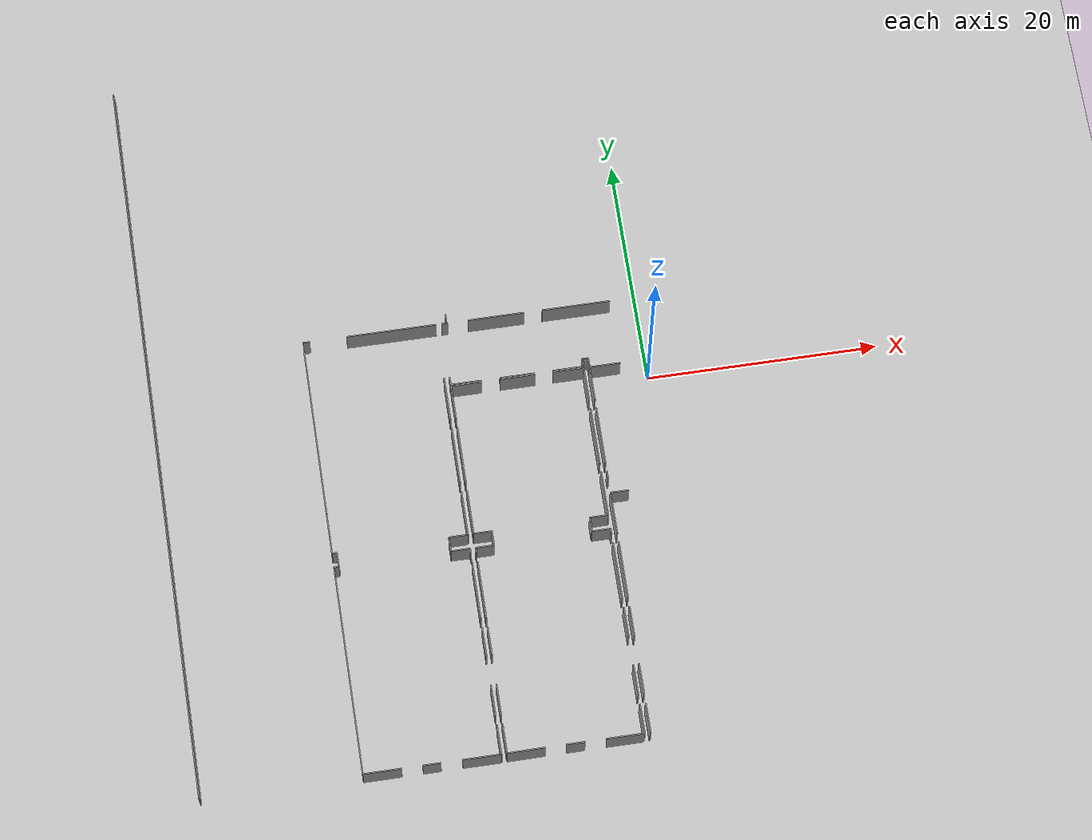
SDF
<sdf version="1.6">
 <world name="default">
  <model name="ground_plane">
   <static>1</static>
   <link name="link">
    <collision name="collision">
     <geometry><plane><normal>0 0 1</normal><size>100 100</size></plane></geometry>
     <surface><friction><ode><mu>100</mu><mu2>50</mu2></ode></friction></surface>
    </collision>
    <visual name="visual">
     <cast_shadows>0</cast_shadows>
     <geometry><plane><normal>0 0 1</normal><size>100 100</size></plane></geometry>
     <material>
      <script><uri>file://media/materials/scripts/gazebo.material</uri><name>Gazebo/Grey</name></script>
     </material>
    </visual>
   </link>
  </model>
  <model name="50052750">
   <static>1</static>
   <link name="Wall_56">
    <collision name="Wall_56_Collision">
     <geometry><box><size>3.21948890026 0.1 2.5</size></box></geometry>
     <pose>1.60974445013 0 1.25 0 0 0</pose>
    </collision>
    <visual name="Wall_56_Visual">
     <pose>1.60974445013 0 1.25 0 0 0</pose>
     <geometry><box><size>3.21948890026 0.1 2.5</size></box></geometry>
     <material>
      <script><uri>file://media/materials/scripts/gazebo.material</uri><name>Gazebo/Grey</name></script>
      <ambient>1 1 1 1</ambient>
     </material>
    </visual>
    <pose>13.5592187065 -64.6295663616 0 0 0 0.0</pose>
   </link>
   <link name="Wall_57">
    <collision name="Wall_57_Collision">
     <geometry><box><size>1.52407853577 0.1 2.5</size></box></geometry>
     <pose>0.762039267883 0 1.25 0 0 0</pose>
    </collision>
    <visual name="Wall_57_Visual">
     <pose>0.762039267883 0 1.25 0 0 0</pose>
     <geometry><box><size>1.52407853577 0.1 2.5</size></box></geometry>
     <material>
      <script><uri>file://media/materials/scripts/gazebo.material</uri><name>Gazebo/Grey</name></script>
      <ambient>1 1 1 1</ambient>
     </material>
    </visual>
    <pose>18.5236505237 -64.6295663616 0 0 0 0.0</pose>
   </link>
   <link name="Wall_58">
    <collision name="Wall_58_Collision">
     <geometry><box><size>3.23587274452 0.1 2.5</size></box></geometry>
     <pose>1.61793637226 0 1.25 0 0 0</pose>
    </collision>
    <visual name="Wall_58_Visual">
     <pose>1.61793637226 0 1.25 0 0 0</pose>
     <geometry><box><size>3.23587274452 0.1 2.5</size></box></geometry>
     <material>
      <script><uri>file://media/materials/scripts/gazebo.material</uri><name>Gazebo/Grey</name></script>
      <ambient>1 1 1 1</ambient>
     </material>
    </visual>
    <pose>21.8479198233 -64.6295663616 0 0 0 0.0</pose>
   </link>
   <link name="Wall_59">
    <collision name="Wall_59_Collision">
     <geometry><box><size>2.55105345578 0.1 2.5</size></box></geometry>
     <pose>1.27552672789 0 1.25 0 0 0</pose>
    </collision>
    <visual name="Wall_59_Visual">
     <pose>1.27552672789 0 1.25 0 0 0</pose>
     <geometry><box><size>2.55105345578 0.1 2.5</size></box></geometry>
     <material>
      <script><uri>file://media/materials/scripts/gazebo.material</uri><name>Gazebo/Grey</name></script>
      <ambient>1 1 1 1</ambient>
     </material>
    </visual>
    <pose>25.0837925678 -64.6295663616 0 0 0 1.57079632679</pose>
   </link>
   <link name="Wall_60">
    <collision name="Wall_60_Collision">
     <geometry><box><size>2.67259871901 0.1 2.5</size></box></geometry>
     <pose>1.33629935951 0 1.25 0 0 0</pose>
    </collision>
    <visual name="Wall_60_Visual">
     <pose>1.33629935951 0 1.25 0 0 0</pose>
     <geometry><box><size>2.67259871901 0.1 2.5</size></box></geometry>
     <material>
      <script><uri>file://media/materials/scripts/gazebo.material</uri><name>Gazebo/Grey</name></script>
      <ambient>1 1 1 1</ambient>
     </material>
    </visual>
    <pose>25.0837925678 -61.2833249297 0 0 0 1.57079632679</pose>
   </link>
   <link name="Wall_61">
    <collision name="Wall_61_Collision">
     <geometry><box><size>2.53847980786 0.1 2.5</size></box></geometry>
     <pose>1.26923990393 0 1.25 0 0 0</pose>
    </collision>
    <visual name="Wall_61_Visual">
     <pose>1.26923990393 0 1.25 0 0 0</pose>
     <geometry><box><size>2.53847980786 0.1 2.5</size></box></geometry>
     <material>
      <script><uri>file://media/materials/scripts/gazebo.material</uri><name>Gazebo/Grey</name></script>
      <ambient>1 1 1 1</ambient>
     </material>
    </visual>
    <pose>25.0837925678 -56.0603077877 0 0 0 1.57079632679</pose>
   </link>
   <link name="Wall_62">
    <collision name="Wall_62_Collision">
     <geometry><box><size>5.03314235783 0.1 2.5</size></box></geometry>
     <pose>2.51657117891 0 1.25 0 0 0</pose>
    </collision>
    <visual name="Wall_62_Visual">
     <pose>2.51657117891 0 1.25 0 0 0</pose>
     <geometry><box><size>5.03314235783 0.1 2.5</size></box></geometry>
     <material>
      <script><uri>file://media/materials/scripts/gazebo.material</uri><name>Gazebo/Grey</name></script>
      <ambient>1 1 1 1</ambient>
     </material>
    </visual>
    <pose>25.0837925678 -52.7702032486 0 0 0 1.57079632679</pose>
   </link>
   <link name="Wall_63">
    <collision name="Wall_63_Collision">
     <geometry><box><size>0.480084738767 0.1 2.5</size></box></geometry>
     <pose>0.240042369383 0 1.25 0 0 0</pose>
    </collision>
    <visual name="Wall_63_Visual">
     <pose>0.240042369383 0 1.25 0 0 0</pose>
     <geometry><box><size>0.480084738767 0.1 2.5</size></box></geometry>
     <material>
      <script><uri>file://media/materials/scripts/gazebo.material</uri><name>Gazebo/Grey</name></script>
      <ambient>1 1 1 1</ambient>
     </material>
    </visual>
    <pose>25.0837925678 -46.9879762904 0 0 0 1.57079632679</pose>
   </link>
   <link name="Wall_64">
    <collision name="Wall_64_Collision">
     <geometry><box><size>1.61628528718 0.1 2.5</size></box></geometry>
     <pose>0.80814264359 0 1.25 0 0 0</pose>
    </collision>
    <visual name="Wall_64_Visual">
     <pose>0.80814264359 0 1.25 0 0 0</pose>
     <geometry><box><size>1.61628528718 0.1 2.5</size></box></geometry>
     <material>
      <script><uri>file://media/materials/scripts/gazebo.material</uri><name>Gazebo/Grey</name></script>
      <ambient>1 1 1 1</ambient>
     </material>
    </visual>
    <pose>25.0837925678 -46.5078915517 0 0 0 3.14159265359</pose>
   </link>
   <link name="Wall_65">
    <collision name="Wall_65_Collision">
     <geometry><box><size>1.24517216372 0.1 2.5</size></box></geometry>
     <pose>0.622586081861 0 1.25 0 0 0</pose>
    </collision>
    <visual name="Wall_65_Visual">
     <pose>0.622586081861 0 1.25 0 0 0</pose>
     <geometry><box><size>1.24517216372 0.1 2.5</size></box></geometry>
     <material>
      <script><uri>file://media/materials/scripts/gazebo.material</uri><name>Gazebo/Grey</name></script>
      <ambient>1 1 1 1</ambient>
     </material>
    </visual>
    <pose>23.4675072807 -46.5078915517 0 0 0 1.57079632679</pose>
   </link>
   <link name="Wall_66">
    <collision name="Wall_66_Collision">
     <geometry><box><size>1.61171305157 0.1 2.5</size></box></geometry>
     <pose>0.805856525787 0 1.25 0 0 0</pose>
    </collision>
    <visual name="Wall_66_Visual">
     <pose>0.805856525787 0 1.25 0 0 0</pose>
     <geometry><box><size>1.61171305157 0.1 2.5</size></box></geometry>
     <material>
      <script><uri>file://media/materials/scripts/gazebo.material</uri><name>Gazebo/Grey</name></script>
      <ambient>1 1 1 1</ambient>
     </material>
    </visual>
    <pose>23.4675072807 -45.2627193879 0 0 0 0.0</pose>
   </link>
   <link name="Wall_67">
    <collision name="Wall_67_Collision">
     <geometry><box><size>3.93593281862 0.1 2.5</size></box></geometry>
     <pose>1.96796640931 0 1.25 0 0 0</pose>
    </collision>
    <visual name="Wall_67_Visual">
     <pose>1.96796640931 0 1.25 0 0 0</pose>
     <geometry><box><size>3.93593281862 0.1 2.5</size></box></geometry>
     <material>
      <script><uri>file://media/materials/scripts/gazebo.material</uri><name>Gazebo/Grey</name></script>
      <ambient>1 1 1 1</ambient>
     </material>
    </visual>
    <pose>25.0792203322 -45.2627193879 0 0 0 1.57079632679</pose>
   </link>
   <link name="Wall_68">
    <collision name="Wall_68_Collision">
     <geometry><box><size>5.05371741806 0.1 2.5</size></box></geometry>
     <pose>2.52685870903 0 1.25 0 0 0</pose>
    </collision>
    <visual name="Wall_68_Visual">
     <pose>2.52685870903 0 1.25 0 0 0</pose>
     <geometry><box><size>5.05371741806 0.1 2.5</size></box></geometry>
     <material>
      <script><uri>file://media/materials/scripts/gazebo.material</uri><name>Gazebo/Grey</name></script>
      <ambient>1 1 1 1</ambient>
     </material>
    </visual>
    <pose>25.0792203322 -40.5868464402 0 0 0 1.57079632679</pose>
   </link>
   <link name="Wall_69">
    <collision name="Wall_69_Collision">
     <geometry><box><size>3.86290405545 0.1 2.5</size></box></geometry>
     <pose>1.93145202772 0 1.25 0 0 0</pose>
    </collision>
    <visual name="Wall_69_Visual">
     <pose>1.93145202772 0 1.25 0 0 0</pose>
     <geometry><box><size>3.86290405545 0.1 2.5</size></box></geometry>
     <material>
      <script><uri>file://media/materials/scripts/gazebo.material</uri><name>Gazebo/Grey</name></script>
      <ambient>1 1 1 1</ambient>
     </material>
    </visual>
    <pose>25.0792203322 -34.781758304 0 0 0 1.57079632679</pose>
   </link>
   <link name="Wall_70">
    <collision name="Wall_70_Collision">
     <geometry><box><size>7.77064142115 0.1 2.5</size></box></geometry>
     <pose>3.88532071058 0 1.25 0 0 0</pose>
    </collision>
    <visual name="Wall_70_Visual">
     <pose>3.88532071058 0 1.25 0 0 0</pose>
     <geometry><box><size>7.77064142115 0.1 2.5</size></box></geometry>
     <material>
      <script><uri>file://media/materials/scripts/gazebo.material</uri><name>Gazebo/Grey</name></script>
      <ambient>1 1 1 1</ambient>
     </material>
    </visual>
    <pose>25.0792203322 -25.9220357625 0 0 0 3.14159265359</pose>
   </link>
   <link name="Wall_71">
    <collision name="Wall_71_Collision">
     <geometry><box><size>0.578895830502 0.1 2.5</size></box></geometry>
     <pose>0.289447915251 0 1.25 0 0 0</pose>
    </collision>
    <visual name="Wall_71_Visual">
     <pose>0.289447915251 0 1.25 0 0 0</pose>
     <geometry><box><size>0.578895830502 0.1 2.5</size></box></geometry>
     <material>
      <script><uri>file://media/materials/scripts/gazebo.material</uri><name>Gazebo/Grey</name></script>
      <ambient>1 1 1 1</ambient>
     </material>
    </visual>
    <pose>14.1231277648 -25.9220357625 0 0 0 3.14159265359</pose>
   </link>
   <link name="Wall_72">
    <collision name="Wall_72_Collision">
     <geometry><box><size>18.528857792 0.1 2.5</size></box></geometry>
     <pose>9.26442889602 0 1.25 0 0 0</pose>
    </collision>
    <visual name="Wall_72_Visual">
     <pose>9.26442889602 0 1.25 0 0 0</pose>
     <geometry><box><size>18.528857792 0.1 2.5</size></box></geometry>
     <material>
      <script><uri>file://media/materials/scripts/gazebo.material</uri><name>Gazebo/Grey</name></script>
      <ambient>1 1 1 1</ambient>
     </material>
    </visual>
    <pose>13.5442319343 -26.7172237385 0 0 0 -1.57079632679</pose>
   </link>
   <link name="Wall_73">
    <collision name="Wall_73_Collision">
     <geometry><box><size>0.411628211202 0.1 2.5</size></box></geometry>
     <pose>0.205814105601 0 1.25 0 0 0</pose>
    </collision>
    <visual name="Wall_73_Visual">
     <pose>0.205814105601 0 1.25 0 0 0</pose>
     <geometry><box><size>0.411628211202 0.1 2.5</size></box></geometry>
     <material>
      <script><uri>file://media/materials/scripts/gazebo.material</uri><name>Gazebo/Grey</name></script>
      <ambient>1 1 1 1</ambient>
     </material>
    </visual>
    <pose>13.5442319343 -45.2460815306 0 0 0 0.0</pose>
   </link>
   <link name="Wall_74">
    <collision name="Wall_74_Collision">
     <geometry><box><size>1.25253854331 0.1 2.5</size></box></geometry>
     <pose>0.626269271656 0 1.25 0 0 0</pose>
    </collision>
    <visual name="Wall_74_Visual">
     <pose>0.626269271656 0 1.25 0 0 0</pose>
     <geometry><box><size>1.25253854331 0.1 2.5</size></box></geometry>
     <material>
      <script><uri>file://media/materials/scripts/gazebo.material</uri><name>Gazebo/Grey</name></script>
      <ambient>1 1 1 1</ambient>
     </material>
    </visual>
    <pose>13.9558601455 -45.2460815306 0 0 0 -1.57079632679</pose>
   </link>
   <link name="Wall_75">
    <collision name="Wall_75_Collision">
     <geometry><box><size>0.409088080309 0.1 2.5</size></box></geometry>
     <pose>0.204544040154 0 1.25 0 0 0</pose>
    </collision>
    <visual name="Wall_75_Visual">
     <pose>0.204544040154 0 1.25 0 0 0</pose>
     <geometry><box><size>0.409088080309 0.1 2.5</size></box></geometry>
     <material>
      <script><uri>file://media/materials/scripts/gazebo.material</uri><name>Gazebo/Grey</name></script>
      <ambient>1 1 1 1</ambient>
     </material>
    </visual>
    <pose>13.9558601455 -46.4986200739 0 0 0 3.14159265359</pose>
   </link>
   <link name="Wall_76">
    <collision name="Wall_76_Collision">
     <geometry><box><size>18.1309505599 0.1 2.5</size></box></geometry>
     <pose>9.06547527994 0 1.25 0 0 0</pose>
    </collision>
    <visual name="Wall_76_Visual">
     <pose>9.06547527994 0 1.25 0 0 0</pose>
     <geometry><box><size>18.1309505599 0.1 2.5</size></box></geometry>
     <material>
      <script><uri>file://media/materials/scripts/gazebo.material</uri><name>Gazebo/Grey</name></script>
      <ambient>1 1 1 1</ambient>
     </material>
    </visual>
    <pose>13.5467720652 -46.4986200739 0 0 0 -1.57010984087</pose>
   </link>
   <link name="Wall_228">
    <collision name="Wall_228_Collision">
     <geometry><box><size>0.682533170934 0.1 2.5</size></box></geometry>
     <pose>0.341266585467 0 1.25 0 0 0</pose>
    </collision>
    <visual name="Wall_228_Visual">
     <pose>0.341266585467 0 1.25 0 0 0</pose>
     <geometry><box><size>0.682533170934 0.1 2.5</size></box></geometry>
     <material>
      <script><uri>file://media/materials/scripts/gazebo.material</uri><name>Gazebo/Grey</name></script>
      <ambient>1 1 1 1</ambient>
     </material>
    </visual>
    <pose>25.5552408616 -31.60430857 0 0 0 1.57079632679</pose>
   </link>
   <link name="Wall_229">
    <collision name="Wall_229_Collision">
     <geometry><box><size>0.540793867108 0.1 2.5</size></box></geometry>
     <pose>0.270396933554 0 1.25 0 0 0</pose>
    </collision>
    <visual name="Wall_229_Visual">
     <pose>0.270396933554 0 1.25 0 0 0</pose>
     <geometry><box><size>0.540793867108 0.1 2.5</size></box></geometry>
     <material>
      <script><uri>file://media/materials/scripts/gazebo.material</uri><name>Gazebo/Grey</name></script>
      <ambient>1 1 1 1</ambient>
     </material>
    </visual>
    <pose>25.5552408616 -25.9274970439 0 0 0 0.0</pose>
   </link>
   <link name="Wall_230">
    <collision name="Wall_230_Collision">
     <geometry><box><size>4.83755227907 0.1 2.5</size></box></geometry>
     <pose>2.41877613953 0 1.25 0 0 0</pose>
    </collision>
    <visual name="Wall_230_Visual">
     <pose>2.41877613953 0 1.25 0 0 0</pose>
     <geometry><box><size>4.83755227907 0.1 2.5</size></box></geometry>
     <material>
      <script><uri>file://media/materials/scripts/gazebo.material</uri><name>Gazebo/Grey</name></script>
      <ambient>1 1 1 1</ambient>
     </material>
    </visual>
    <pose>27.8687920789 -25.9274970439 0 0 0 0.0</pose>
   </link>
   <link name="Wall_231">
    <collision name="Wall_231_Collision">
     <geometry><box><size>5.90224814285 0.1 2.5</size></box></geometry>
     <pose>2.95112407142 0 1.25 0 0 0</pose>
    </collision>
    <visual name="Wall_231_Visual">
     <pose>2.95112407142 0 1.25 0 0 0</pose>
     <geometry><box><size>5.90224814285 0.1 2.5</size></box></geometry>
     <material>
      <script><uri>file://media/materials/scripts/gazebo.material</uri><name>Gazebo/Grey</name></script>
      <ambient>1 1 1 1</ambient>
     </material>
    </visual>
    <pose>34.3070078401 -25.9274970439 0 0 0 0.0</pose>
   </link>
   <link name="Wall_266">
    <collision name="Wall_266_Collision">
     <geometry><box><size>0.700949119908 0.1 2.5</size></box></geometry>
     <pose>0.350474559954 0 1.25 0 0 0</pose>
    </collision>
    <visual name="Wall_266_Visual">
     <pose>0.350474559954 0 1.25 0 0 0</pose>
     <geometry><box><size>0.700949119908 0.1 2.5</size></box></geometry>
     <material>
      <script><uri>file://media/materials/scripts/gazebo.material</uri><name>Gazebo/Grey</name></script>
      <ambient>1 1 1 1</ambient>
     </material>
    </visual>
    <pose>37.5587564027 -31.6081187664 0 0 0 1.57079632679</pose>
   </link>
   <link name="Wall_267">
    <collision name="Wall_267_Collision">
     <geometry><box><size>0.508280191678 0.1 2.5</size></box></geometry>
     <pose>0.254140095839 0 1.25 0 0 0</pose>
    </collision>
    <visual name="Wall_267_Visual">
     <pose>0.254140095839 0 1.25 0 0 0</pose>
     <geometry><box><size>0.508280191678 0.1 2.5</size></box></geometry>
     <material>
      <script><uri>file://media/materials/scripts/gazebo.material</uri><name>Gazebo/Grey</name></script>
      <ambient>1 1 1 1</ambient>
     </material>
    </visual>
    <pose>37.5587564027 -30.9071696465 0 0 0 3.14159265359</pose>
   </link>
   <link name="Wall_268">
    <collision name="Wall_268_Collision">
     <geometry><box><size>0.703616257346 0.1 2.5</size></box></geometry>
     <pose>0.351808128673 0 1.25 0 0 0</pose>
    </collision>
    <visual name="Wall_268_Visual">
     <pose>0.351808128673 0 1.25 0 0 0</pose>
     <geometry><box><size>0.703616257346 0.1 2.5</size></box></geometry>
     <material>
      <script><uri>file://media/materials/scripts/gazebo.material</uri><name>Gazebo/Grey</name></script>
      <ambient>1 1 1 1</ambient>
     </material>
    </visual>
    <pose>37.050476211 -30.9071696465 0 0 0 -1.57079632679</pose>
   </link>
   <link name="Wall_269">
    <collision name="Wall_269_Collision">
     <geometry><box><size>2.6694235554 0.1 2.5</size></box></geometry>
     <pose>1.3347117777 0 1.25 0 0 0</pose>
    </collision>
    <visual name="Wall_269_Visual">
     <pose>1.3347117777 0 1.25 0 0 0</pose>
     <geometry><box><size>2.6694235554 0.1 2.5</size></box></geometry>
     <material>
      <script><uri>file://media/materials/scripts/gazebo.material</uri><name>Gazebo/Grey</name></script>
      <ambient>1 1 1 1</ambient>
     </material>
    </visual>
    <pose>37.050476211 -31.6107859038 0 0 0 3.14159265359</pose>
   </link>
   <link name="Wall_270">
    <collision name="Wall_270_Collision">
     <geometry><box><size>3.01056313432 0.1 2.5</size></box></geometry>
     <pose>1.50528156716 0 1.25 0 0 0</pose>
    </collision>
    <visual name="Wall_270_Visual">
     <pose>1.50528156716 0 1.25 0 0 0</pose>
     <geometry><box><size>3.01056313432 0.1 2.5</size></box></geometry>
     <material>
      <script><uri>file://media/materials/scripts/gazebo.material</uri><name>Gazebo/Grey</name></script>
      <ambient>1 1 1 1</ambient>
     </material>
    </visual>
    <pose>32.8038853842 -31.6107859038 0 0 0 3.14159265359</pose>
   </link>
   <link name="Wall_271">
    <collision name="Wall_271_Collision">
     <geometry><box><size>2.64301413124 0.1 2.5</size></box></geometry>
     <pose>1.32150706562 0 1.25 0 0 0</pose>
    </collision>
    <visual name="Wall_271_Visual">
     <pose>1.32150706562 0 1.25 0 0 0</pose>
     <geometry><box><size>2.64301413124 0.1 2.5</size></box></geometry>
     <material>
      <script><uri>file://media/materials/scripts/gazebo.material</uri><name>Gazebo/Grey</name></script>
      <ambient>1 1 1 1</ambient>
     </material>
    </visual>
    <pose>28.1982470557 -31.6107859038 0 0 0 3.13914191366</pose>
   </link>
   <link name="Wall_372">
    <collision name="Wall_372_Collision">
     <geometry><box><size>0.617251806986 0.1 2.5</size></box></geometry>
     <pose>0.308625903493 0 1.25 0 0 0</pose>
    </collision>
    <visual name="Wall_372_Visual">
     <pose>0.308625903493 0 1.25 0 0 0</pose>
     <geometry><box><size>0.617251806986 0.1 2.5</size></box></geometry>
     <material>
      <script><uri>file://media/materials/scripts/gazebo.material</uri><name>Gazebo/Grey</name></script>
      <ambient>1 1 1 1</ambient>
     </material>
    </visual>
    <pose>26.0127184354 -25.6715788565 0 0 0 1.57079632679</pose>
   </link>
   <link name="Wall_426">
    <collision name="Wall_426_Collision">
     <geometry><box><size>2.56413512988 0.1 2.5</size></box></geometry>
     <pose>1.28206756494 0 1.25 0 0 0</pose>
    </collision>
    <visual name="Wall_426_Visual">
     <pose>1.28206756494 0 1.25 0 0 0</pose>
     <geometry><box><size>2.56413512988 0.1 2.5</size></box></geometry>
     <material>
      <script><uri>file://media/materials/scripts/gazebo.material</uri><name>Gazebo/Grey</name></script>
      <ambient>1 1 1 1</ambient>
     </material>
    </visual>
    <pose>25.5486365212 -64.6105153799 0 0 0 1.57079632679</pose>
   </link>
   <link name="Wall_427">
    <collision name="Wall_427_Collision">
     <geometry><box><size>2.66980457503 0.1 2.5</size></box></geometry>
     <pose>1.33490228751 0 1.25 0 0 0</pose>
    </collision>
    <visual name="Wall_427_Visual">
     <pose>1.33490228751 0 1.25 0 0 0</pose>
     <geometry><box><size>2.66980457503 0.1 2.5</size></box></geometry>
     <material>
      <script><uri>file://media/materials/scripts/gazebo.material</uri><name>Gazebo/Grey</name></script>
      <ambient>1 1 1 1</ambient>
     </material>
    </visual>
    <pose>25.5486365212 -61.2781176614 0 0 0 1.57079632679</pose>
   </link>
   <link name="Wall_428">
    <collision name="Wall_428_Collision">
     <geometry><box><size>2.51282448585 0.1 2.5</size></box></geometry>
     <pose>1.25641224292 0 1.25 0 0 0</pose>
    </collision>
    <visual name="Wall_428_Visual">
     <pose>1.25641224292 0 1.25 0 0 0</pose>
     <geometry><box><size>2.51282448585 0.1 2.5</size></box></geometry>
     <material>
      <script><uri>file://media/materials/scripts/gazebo.material</uri><name>Gazebo/Grey</name></script>
      <ambient>1 1 1 1</ambient>
     </material>
    </visual>
    <pose>25.5486365212 -56.0595457484 0 0 0 1.57079632679</pose>
   </link>
   <link name="Wall_429">
    <collision name="Wall_429_Collision">
     <geometry><box><size>5.0279350895 0.1 2.5</size></box></geometry>
     <pose>2.51396754475 0 1.25 0 0 0</pose>
    </collision>
    <visual name="Wall_429_Visual">
     <pose>2.51396754475 0 1.25 0 0 0</pose>
     <geometry><box><size>5.0279350895 0.1 2.5</size></box></geometry>
     <material>
      <script><uri>file://media/materials/scripts/gazebo.material</uri><name>Gazebo/Grey</name></script>
      <ambient>1 1 1 1</ambient>
     </material>
    </visual>
    <pose>25.5486365212 -52.767028085 0 0 0 1.57079632679</pose>
   </link>
   <link name="Wall_430">
    <collision name="Wall_430_Collision">
     <geometry><box><size>0.467257077757 0.1 2.5</size></box></geometry>
     <pose>0.233628538879 0 1.25 0 0 0</pose>
    </collision>
    <visual name="Wall_430_Visual">
     <pose>0.233628538879 0 1.25 0 0 0</pose>
     <geometry><box><size>0.467257077757 0.1 2.5</size></box></geometry>
     <material>
      <script><uri>file://media/materials/scripts/gazebo.material</uri><name>Gazebo/Grey</name></script>
      <ambient>1 1 1 1</ambient>
     </material>
    </visual>
    <pose>25.5486365212 -46.9750216229 0 0 0 1.57079632679</pose>
   </link>
   <link name="Wall_431">
    <collision name="Wall_431_Collision">
     <geometry><box><size>1.57259503582 0.1 2.5</size></box></geometry>
     <pose>0.786297517911 0 1.25 0 0 0</pose>
    </collision>
    <visual name="Wall_431_Visual">
     <pose>0.786297517911 0 1.25 0 0 0</pose>
     <geometry><box><size>1.57259503582 0.1 2.5</size></box></geometry>
     <material>
      <script><uri>file://media/materials/scripts/gazebo.material</uri><name>Gazebo/Grey</name></script>
      <ambient>1 1 1 1</ambient>
     </material>
    </visual>
    <pose>25.5486365212 -46.5077645451 0 0 0 0.0</pose>
   </link>
   <link name="Wall_432">
    <collision name="Wall_432_Collision">
     <geometry><box><size>1.26917640066 0.1 2.5</size></box></geometry>
     <pose>0.63458820033 0 1.25 0 0 0</pose>
    </collision>
    <visual name="Wall_432_Visual">
     <pose>0.63458820033 0 1.25 0 0 0</pose>
     <geometry><box><size>1.26917640066 0.1 2.5</size></box></geometry>
     <material>
      <script><uri>file://media/materials/scripts/gazebo.material</uri><name>Gazebo/Grey</name></script>
      <ambient>1 1 1 1</ambient>
     </material>
    </visual>
    <pose>27.1212315571 -46.5077645451 0 0 0 1.57079632679</pose>
   </link>
   <link name="Wall_433">
    <collision name="Wall_433_Collision">
     <geometry><box><size>1.55329004104 0.1 2.5</size></box></geometry>
     <pose>0.776645020518 0 1.25 0 0 0</pose>
    </collision>
    <visual name="Wall_433_Visual">
     <pose>0.776645020518 0 1.25 0 0 0</pose>
     <geometry><box><size>1.55329004104 0.1 2.5</size></box></geometry>
     <material>
      <script><uri>file://media/materials/scripts/gazebo.material</uri><name>Gazebo/Grey</name></script>
      <ambient>1 1 1 1</ambient>
     </material>
    </visual>
    <pose>27.1212315571 -45.2385881444 0 0 0 3.14159265359</pose>
   </link>
   <link name="Wall_434">
    <collision name="Wall_434_Collision">
     <geometry><box><size>3.8960527636 0.1 2.5</size></box></geometry>
     <pose>1.9480263818 0 1.25 0 0 0</pose>
    </collision>
    <visual name="Wall_434_Visual">
     <pose>1.9480263818 0 1.25 0 0 0</pose>
     <geometry><box><size>3.8960527636 0.1 2.5</size></box></geometry>
     <material>
      <script><uri>file://media/materials/scripts/gazebo.material</uri><name>Gazebo/Grey</name></script>
      <ambient>1 1 1 1</ambient>
     </material>
    </visual>
    <pose>25.567941516 -45.2385881444 0 0 0 1.57079632679</pose>
   </link>
   <link name="Wall_435">
    <collision name="Wall_435_Collision">
     <geometry><box><size>5.07784866154 0.1 2.5</size></box></geometry>
     <pose>2.53892433077 0 1.25 0 0 0</pose>
    </collision>
    <visual name="Wall_435_Visual">
     <pose>2.53892433077 0 1.25 0 0 0</pose>
     <geometry><box><size>5.07784866154 0.1 2.5</size></box></geometry>
     <material>
      <script><uri>file://media/materials/scripts/gazebo.material</uri><name>Gazebo/Grey</name></script>
      <ambient>1 1 1 1</ambient>
     </material>
    </visual>
    <pose>25.567941516 -40.5784640083 0 0 0 1.57079632679</pose>
   </link>
   <link name="Wall_436">
    <collision name="Wall_436_Collision">
     <geometry><box><size>3.01462734375 0.1 2.5</size></box></geometry>
     <pose>1.50731367187 0 1.25 0 0 0</pose>
    </collision>
    <visual name="Wall_436_Visual">
     <pose>1.50731367187 0 1.25 0 0 0</pose>
     <geometry><box><size>3.01462734375 0.1 2.5</size></box></geometry>
     <material>
      <script><uri>file://media/materials/scripts/gazebo.material</uri><name>Gazebo/Grey</name></script>
      <ambient>1 1 1 1</ambient>
     </material>
    </visual>
    <pose>25.567941516 -34.7489906155 0 0 0 1.57079632679</pose>
   </link>
   <link name="Wall_437">
    <collision name="Wall_437_Collision">
     <geometry><box><size>2.63462376216 0.1 2.5</size></box></geometry>
     <pose>1.31731188108 0 1.25 0 0 0</pose>
    </collision>
    <visual name="Wall_437_Visual">
     <pose>1.31731188108 0 1.25 0 0 0</pose>
     <geometry><box><size>2.63462376216 0.1 2.5</size></box></geometry>
     <material>
      <script><uri>file://media/materials/scripts/gazebo.material</uri><name>Gazebo/Grey</name></script>
      <ambient>1 1 1 1</ambient>
     </material>
    </visual>
    <pose>25.567941516 -31.7343632717 0 0 0 0.0</pose>
   </link>
   <link name="Wall_438">
    <collision name="Wall_438_Collision">
     <geometry><box><size>3.04803006499 0.1 2.5</size></box></geometry>
     <pose>1.52401503249 0 1.25 0 0 0</pose>
    </collision>
    <visual name="Wall_438_Visual">
     <pose>1.52401503249 0 1.25 0 0 0</pose>
     <geometry><box><size>3.04803006499 0.1 2.5</size></box></geometry>
     <material>
      <script><uri>file://media/materials/scripts/gazebo.material</uri><name>Gazebo/Grey</name></script>
      <ambient>1 1 1 1</ambient>
     </material>
    </visual>
    <pose>29.7641107446 -31.7343632717 0 0 0 0.0</pose>
   </link>
   <link name="Wall_439">
    <collision name="Wall_439_Collision">
     <geometry><box><size>2.66510533288 0.1 2.5</size></box></geometry>
     <pose>1.33255266644 0 1.25 0 0 0</pose>
    </collision>
    <visual name="Wall_439_Visual">
     <pose>1.33255266644 0 1.25 0 0 0</pose>
     <geometry><box><size>2.66510533288 0.1 2.5</size></box></geometry>
     <material>
      <script><uri>file://media/materials/scripts/gazebo.material</uri><name>Gazebo/Grey</name></script>
      <ambient>1 1 1 1</ambient>
     </material>
    </visual>
    <pose>34.3781315051 -31.7343632717 0 0 0 0.0</pose>
   </link>
   <link name="Wall_440">
    <collision name="Wall_440_Collision">
     <geometry><box><size>3.03609144979 0.1 2.5</size></box></geometry>
     <pose>1.5180457249 0 1.25 0 0 0</pose>
    </collision>
    <visual name="Wall_440_Visual">
     <pose>1.5180457249 0 1.25 0 0 0</pose>
     <geometry><box><size>3.03609144979 0.1 2.5</size></box></geometry>
     <material>
      <script><uri>file://media/materials/scripts/gazebo.material</uri><name>Gazebo/Grey</name></script>
      <ambient>1 1 1 1</ambient>
     </material>
    </visual>
    <pose>37.043236838 -31.7343632717 0 0 0 -1.57079632679</pose>
   </link>
   <link name="Wall_441">
    <collision name="Wall_441_Collision">
     <geometry><box><size>5.04685906465 0.1 2.5</size></box></geometry>
     <pose>2.52342953232 0 1.25 0 0 0</pose>
    </collision>
    <visual name="Wall_441_Visual">
     <pose>2.52342953232 0 1.25 0 0 0</pose>
     <geometry><box><size>5.04685906465 0.1 2.5</size></box></geometry>
     <material>
      <script><uri>file://media/materials/scripts/gazebo.material</uri><name>Gazebo/Grey</name></script>
      <ambient>1 1 1 1</ambient>
     </material>
    </visual>
    <pose>37.043236838 -35.5401143821 0 0 0 -1.57079632679</pose>
   </link>
   <link name="Wall_442">
    <collision name="Wall_442_Collision">
     <geometry><box><size>3.94393423093 0.1 2.5</size></box></geometry>
     <pose>1.97196711547 0 1.25 0 0 0</pose>
    </collision>
    <visual name="Wall_442_Visual">
     <pose>1.97196711547 0 1.25 0 0 0</pose>
     <geometry><box><size>3.94393423093 0.1 2.5</size></box></geometry>
     <material>
      <script><uri>file://media/materials/scripts/gazebo.material</uri><name>Gazebo/Grey</name></script>
      <ambient>1 1 1 1</ambient>
     </material>
    </visual>
    <pose>37.043236838 -41.3058304894 0 0 0 -1.57079632679</pose>
   </link>
   <link name="Wall_443">
    <collision name="Wall_443_Collision">
     <geometry><box><size>1.5742461209 0.1 2.5</size></box></geometry>
     <pose>0.787123060451 0 1.25 0 0 0</pose>
    </collision>
    <visual name="Wall_443_Visual">
     <pose>0.787123060451 0 1.25 0 0 0</pose>
     <geometry><box><size>1.5742461209 0.1 2.5</size></box></geometry>
     <material>
      <script><uri>file://media/materials/scripts/gazebo.material</uri><name>Gazebo/Grey</name></script>
      <ambient>1 1 1 1</ambient>
     </material>
    </visual>
    <pose>37.043236838 -45.2497647204 0 0 0 3.14159265359</pose>
   </link>
   <link name="Wall_444">
    <collision name="Wall_444_Collision">
     <geometry><box><size>1.23894884303 0.1 2.5</size></box></geometry>
     <pose>0.619474421517 0 1.25 0 0 0</pose>
    </collision>
    <visual name="Wall_444_Visual">
     <pose>0.619474421517 0 1.25 0 0 0</pose>
     <geometry><box><size>1.23894884303 0.1 2.5</size></box></geometry>
     <material>
      <script><uri>file://media/materials/scripts/gazebo.material</uri><name>Gazebo/Grey</name></script>
      <ambient>1 1 1 1</ambient>
     </material>
    </visual>
    <pose>35.4689907171 -45.2497647204 0 0 0 -1.57079632679</pose>
   </link>
   <link name="Wall_445">
    <collision name="Wall_445_Collision">
     <geometry><box><size>1.58466065756 0.1 2.5</size></box></geometry>
     <pose>0.792330328782 0 1.25 0 0 0</pose>
    </collision>
    <visual name="Wall_445_Visual">
     <pose>0.792330328782 0 1.25 0 0 0</pose>
     <geometry><box><size>1.58466065756 0.1 2.5</size></box></geometry>
     <material>
      <script><uri>file://media/materials/scripts/gazebo.material</uri><name>Gazebo/Grey</name></script>
      <ambient>1 1 1 1</ambient>
     </material>
    </visual>
    <pose>35.4689907171 -46.4887135634 0 0 0 0.0</pose>
   </link>
   <link name="Wall_446">
    <collision name="Wall_446_Collision">
     <geometry><box><size>0.488467170713 0.1 2.5</size></box></geometry>
     <pose>0.244233585357 0 1.25 0 0 0</pose>
    </collision>
    <visual name="Wall_446_Visual">
     <pose>0.244233585357 0 1.25 0 0 0</pose>
     <geometry><box><size>0.488467170713 0.1 2.5</size></box></geometry>
     <material>
      <script><uri>file://media/materials/scripts/gazebo.material</uri><name>Gazebo/Grey</name></script>
      <ambient>1 1 1 1</ambient>
     </material>
    </visual>
    <pose>37.0536513747 -46.4887135634 0 0 0 -1.57079632679</pose>
   </link>
   <link name="Wall_447">
    <collision name="Wall_447_Collision">
     <geometry><box><size>5.05282837225 0.1 2.5</size></box></geometry>
     <pose>2.52641418612 0 1.25 0 0 0</pose>
    </collision>
    <visual name="Wall_447_Visual">
     <pose>2.52641418612 0 1.25 0 0 0</pose>
     <geometry><box><size>5.05282837225 0.1 2.5</size></box></geometry>
     <material>
      <script><uri>file://media/materials/scripts/gazebo.material</uri><name>Gazebo/Grey</name></script>
      <ambient>1 1 1 1</ambient>
     </material>
    </visual>
    <pose>37.0536513747 -47.7251222756 0 0 0 -1.57079632679</pose>
   </link>
   <link name="Wall_448">
    <collision name="Wall_448_Collision">
     <geometry><box><size>2.56070595318 0.1 2.5</size></box></geometry>
     <pose>1.28035297659 0 1.25 0 0 0</pose>
    </collision>
    <visual name="Wall_448_Visual">
     <pose>1.28035297659 0 1.25 0 0 0</pose>
     <geometry><box><size>2.56070595318 0.1 2.5</size></box></geometry>
     <material>
      <script><uri>file://media/materials/scripts/gazebo.material</uri><name>Gazebo/Grey</name></script>
      <ambient>1 1 1 1</ambient>
     </material>
    </visual>
    <pose>37.0536513747 -53.5247491303 0 0 0 -1.57079632679</pose>
   </link>
   <link name="Wall_449">
    <collision name="Wall_449_Collision">
     <geometry><box><size>2.63589382761 0.1 2.5</size></box></geometry>
     <pose>1.3179469138 0 1.25 0 0 0</pose>
    </collision>
    <visual name="Wall_449_Visual">
     <pose>1.3179469138 0 1.25 0 0 0</pose>
     <geometry><box><size>2.63589382761 0.1 2.5</size></box></geometry>
     <material>
      <script><uri>file://media/materials/scripts/gazebo.material</uri><name>Gazebo/Grey</name></script>
      <ambient>1 1 1 1</ambient>
     </material>
    </visual>
    <pose>37.0536513747 -58.6249509437 0 0 0 -1.57079632679</pose>
   </link>
   <link name="Wall_450">
    <collision name="Wall_450_Collision">
     <geometry><box><size>2.54813230526 0.1 2.5</size></box></geometry>
     <pose>1.27406615263 0 1.25 0 0 0</pose>
    </collision>
    <visual name="Wall_450_Visual">
     <pose>1.27406615263 0 1.25 0 0 0</pose>
     <geometry><box><size>2.54813230526 0.1 2.5</size></box></geometry>
     <material>
      <script><uri>file://media/materials/scripts/gazebo.material</uri><name>Gazebo/Grey</name></script>
      <ambient>1 1 1 1</ambient>
     </material>
    </visual>
    <pose>37.0536513747 -62.0378708115 0 0 0 -1.57079632679</pose>
   </link>
   <link name="Wall_451">
    <collision name="Wall_451_Collision">
     <geometry><box><size>3.1948496306 0.1 2.5</size></box></geometry>
     <pose>1.5974248153 0 1.25 0 0 0</pose>
    </collision>
    <visual name="Wall_451_Visual">
     <pose>1.5974248153 0 1.25 0 0 0</pose>
     <geometry><box><size>3.1948496306 0.1 2.5</size></box></geometry>
     <material>
      <script><uri>file://media/materials/scripts/gazebo.material</uri><name>Gazebo/Grey</name></script>
      <ambient>1 1 1 1</ambient>
     </material>
    </visual>
    <pose>37.0536513747 -64.5860031167 0 0 0 3.14159265359</pose>
   </link>
   <link name="Wall_452">
    <collision name="Wall_452_Collision">
     <geometry><box><size>1.56268852534 0.1 2.5</size></box></geometry>
     <pose>0.78134426267 0 1.25 0 0 0</pose>
    </collision>
    <visual name="Wall_452_Visual">
     <pose>0.78134426267 0 1.25 0 0 0</pose>
     <geometry><box><size>1.56268852534 0.1 2.5</size></box></geometry>
     <material>
      <script><uri>file://media/materials/scripts/gazebo.material</uri><name>Gazebo/Grey</name></script>
      <ambient>1 1 1 1</ambient>
     </material>
    </visual>
    <pose>32.0781699881 -64.5860031167 0 0 0 3.14159265359</pose>
   </link>
   <link name="Wall_453">
    <collision name="Wall_453_Collision">
     <geometry><box><size>3.22085224222 0.1 2.5</size></box></geometry>
     <pose>1.61042612111 0 1.25 0 0 0</pose>
    </collision>
    <visual name="Wall_453_Visual">
     <pose>1.61042612111 0 1.25 0 0 0</pose>
     <geometry><box><size>3.22085224222 0.1 2.5</size></box></geometry>
     <material>
      <script><uri>file://media/materials/scripts/gazebo.material</uri><name>Gazebo/Grey</name></script>
      <ambient>1 1 1 1</ambient>
     </material>
    </visual>
    <pose>28.7693954869 -64.5860031167 0 0 0 -3.13398209033</pose>
   </link>
   <link name="Wall_454">
    <collision name="Wall_454_Collision">
     <geometry><box><size>2.59283860897 0.1 2.5</size></box></geometry>
     <pose>1.29641930449 0 1.25 0 0 0</pose>
    </collision>
    <visual name="Wall_454_Visual">
     <pose>1.29641930449 0 1.25 0 0 0</pose>
     <geometry><box><size>2.59283860897 0.1 2.5</size></box></geometry>
     <material>
      <script><uri>file://media/materials/scripts/gazebo.material</uri><name>Gazebo/Grey</name></script>
      <ambient>1 1 1 1</ambient>
     </material>
    </visual>
    <pose>37.5372922967 -64.6282962961 0 0 0 1.57079632679</pose>
   </link>
   <link name="Wall_455">
    <collision name="Wall_455_Collision">
     <geometry><box><size>2.70689048607 0.1 2.5</size></box></geometry>
     <pose>1.35344524303 0 1.25 0 0 0</pose>
    </collision>
    <visual name="Wall_455_Visual">
     <pose>1.35344524303 0 1.25 0 0 0</pose>
     <geometry><box><size>2.70689048607 0.1 2.5</size></box></geometry>
     <material>
      <script><uri>file://media/materials/scripts/gazebo.material</uri><name>Gazebo/Grey</name></script>
      <ambient>1 1 1 1</ambient>
     </material>
    </visual>
    <pose>37.5372922967 -61.2734184193 0 0 0 1.57079632679</pose>
   </link>
   <link name="Wall_456">
    <collision name="Wall_456_Collision">
     <geometry><box><size>2.6290354742 0.1 2.5</size></box></geometry>
     <pose>1.3145177371 0 1.25 0 0 0</pose>
    </collision>
    <visual name="Wall_456_Visual">
     <pose>1.3145177371 0 1.25 0 0 0</pose>
     <geometry><box><size>2.6290354742 0.1 2.5</size></box></geometry>
     <material>
      <script><uri>file://media/materials/scripts/gazebo.material</uri><name>Gazebo/Grey</name></script>
      <ambient>1 1 1 1</ambient>
     </material>
    </visual>
    <pose>37.5372922967 -56.15505467 0 0 0 1.57079632679</pose>
   </link>
   <link name="Wall_457">
    <collision name="Wall_457_Collision">
     <geometry><box><size>4.99135720464 0.1 2.5</size></box></geometry>
     <pose>2.49567860232 0 1.25 0 0 0</pose>
    </collision>
    <visual name="Wall_457_Visual">
     <pose>2.49567860232 0 1.25 0 0 0</pose>
     <geometry><box><size>4.99135720464 0.1 2.5</size></box></geometry>
     <material>
      <script><uri>file://media/materials/scripts/gazebo.material</uri><name>Gazebo/Grey</name></script>
      <ambient>1 1 1 1</ambient>
     </material>
    </visual>
    <pose>37.5372922967 -52.71317731 0 0 0 1.57079632679</pose>
   </link>
   <link name="Wall_458">
    <collision name="Wall_458_Collision">
     <geometry><box><size>3.68522189948 0.1 2.5</size></box></geometry>
     <pose>1.84261094974 0 1.25 0 0 0</pose>
    </collision>
    <visual name="Wall_458_Visual">
     <pose>1.84261094974 0 1.25 0 0 0</pose>
     <geometry><box><size>3.68522189948 0.1 2.5</size></box></geometry>
     <material>
      <script><uri>file://media/materials/scripts/gazebo.material</uri><name>Gazebo/Grey</name></script>
      <ambient>1 1 1 1</ambient>
     </material>
    </visual>
    <pose>37.5372922967 -46.9851821464 0 0 0 1.57079632679</pose>
   </link>
   <link name="Wall_459">
    <collision name="Wall_459_Collision">
     <geometry><box><size>1.57513516672 0.1 2.5</size></box></geometry>
     <pose>0.787567583358 0 1.25 0 0 0</pose>
    </collision>
    <visual name="Wall_459_Visual">
     <pose>0.787567583358 0 1.25 0 0 0</pose>
     <geometry><box><size>1.57513516672 0.1 2.5</size></box></geometry>
     <material>
      <script><uri>file://media/materials/scripts/gazebo.material</uri><name>Gazebo/Grey</name></script>
      <ambient>1 1 1 1</ambient>
     </material>
    </visual>
    <pose>37.5372922967 -43.299960247 0 0 0 0.0</pose>
   </link>
   <link name="Wall_462">
    <collision name="Wall_462_Collision">
     <geometry><box><size>0.708315499498 0.1 2.5</size></box></geometry>
     <pose>0.354157749749 0 1.25 0 0 0</pose>
    </collision>
    <visual name="Wall_462_Visual">
     <pose>0.354157749749 0 1.25 0 0 0</pose>
     <geometry><box><size>0.708315499498 0.1 2.5</size></box></geometry>
     <material>
      <script><uri>file://media/materials/scripts/gazebo.material</uri><name>Gazebo/Grey</name></script>
      <ambient>1 1 1 1</ambient>
     </material>
    </visual>
    <pose>37.5400864407 -42.0433574942 0 0 0 1.57079632679</pose>
   </link>
   <link name="Wall_463">
    <collision name="Wall_463_Collision">
     <geometry><box><size>5.06248086964 0.1 2.5</size></box></geometry>
     <pose>2.53124043482 0 1.25 0 0 0</pose>
    </collision>
    <visual name="Wall_463_Visual">
     <pose>2.53124043482 0 1.25 0 0 0</pose>
     <geometry><box><size>5.06248086964 0.1 2.5</size></box></geometry>
     <material>
      <script><uri>file://media/materials/scripts/gazebo.material</uri><name>Gazebo/Grey</name></script>
      <ambient>1 1 1 1</ambient>
     </material>
    </visual>
    <pose>37.5400864407 -40.5773209493 0 0 0 1.57079632679</pose>
   </link>
   <link name="Wall_464">
    <collision name="Wall_464_Collision">
     <geometry><box><size>3.04079069194 0.1 2.5</size></box></geometry>
     <pose>1.52039534597 0 1.25 0 0 0</pose>
    </collision>
    <visual name="Wall_464_Visual">
     <pose>1.52039534597 0 1.25 0 0 0</pose>
     <geometry><box><size>3.04079069194 0.1 2.5</size></box></geometry>
     <material>
      <script><uri>file://media/materials/scripts/gazebo.material</uri><name>Gazebo/Grey</name></script>
      <ambient>1 1 1 1</ambient>
     </material>
    </visual>
    <pose>37.5400864407 -34.77896416 0 0 0 1.57079632679</pose>
   </link>
   <link name="Wall_465">
    <collision name="Wall_465_Collision">
     <geometry><box><size>2.65850099256 0.1 2.5</size></box></geometry>
     <pose>1.32925049628 0 1.25 0 0 0</pose>
    </collision>
    <visual name="Wall_465_Visual">
     <pose>1.32925049628 0 1.25 0 0 0</pose>
     <geometry><box><size>2.65850099256 0.1 2.5</size></box></geometry>
     <material>
      <script><uri>file://media/materials/scripts/gazebo.material</uri><name>Gazebo/Grey</name></script>
      <ambient>1 1 1 1</ambient>
     </material>
    </visual>
    <pose>37.5400864407 -31.7381734681 0 0 0 0.0</pose>
   </link>
   <link name="Wall_563">
    <collision name="Wall_563_Collision">
     <geometry><box><size>64.6601749388 0.1 2.5</size></box></geometry>
     <pose>32.3300874694 0 1.25 0 0 0</pose>
    </collision>
    <visual name="Wall_563_Visual">
     <pose>32.3300874694 0 1.25 0 0 0</pose>
     <geometry><box><size>64.6601749388 0.1 2.5</size></box></geometry>
     <material>
      <script><uri>file://media/materials/scripts/gazebo.material</uri><name>Gazebo/Grey</name></script>
      <ambient>1 1 1 1</ambient>
     </material>
    </visual>
    <pose>0.0 -64.6601749388 0 0 0 1.57079632679</pose>
   </link>
   <pose>-42.55 32.5101749388 0 0 0 0</pose>
  </model>
 </world>
</sdf>
